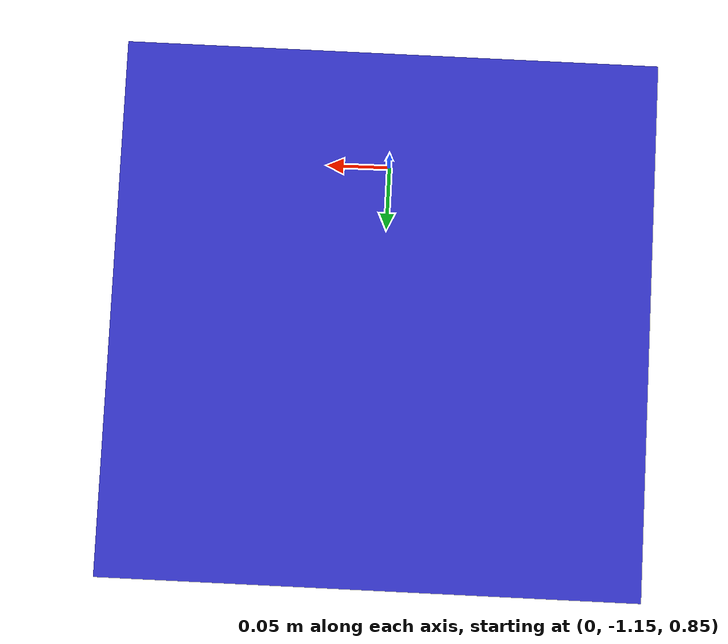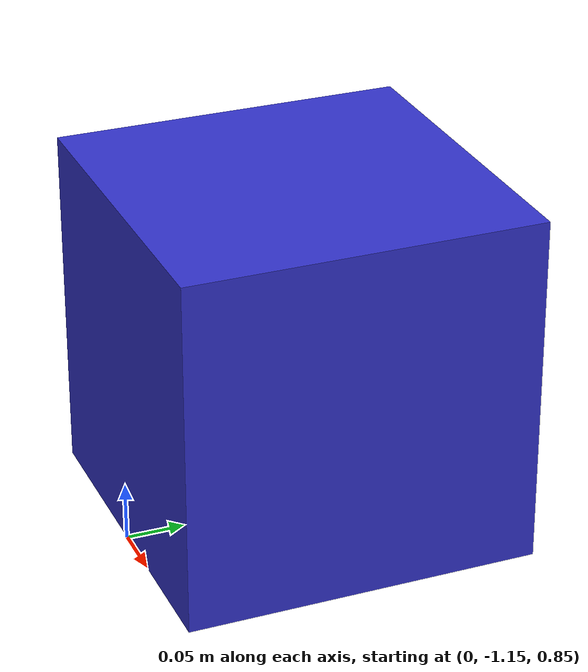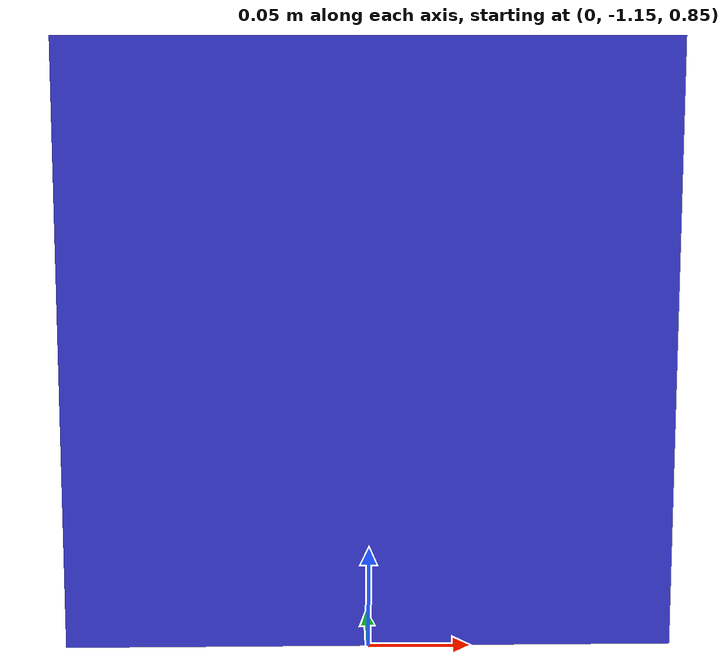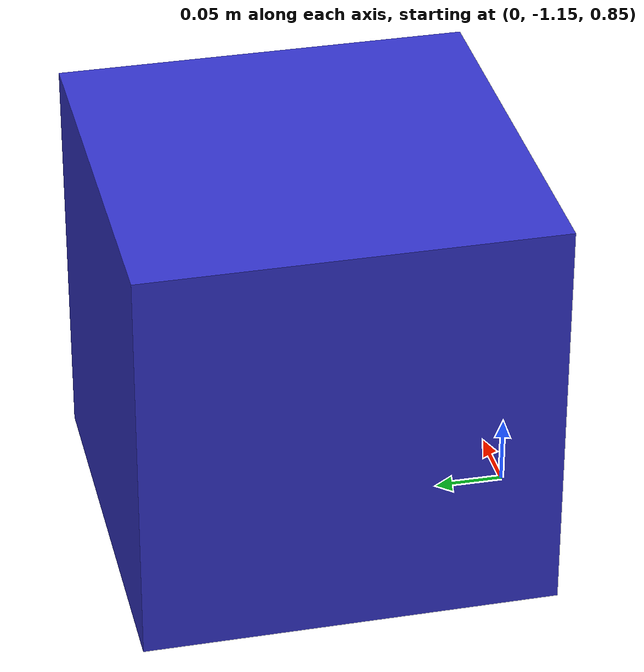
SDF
<?xml version="1.0"?>
<sdf version="1.4">
  <model name="world">
    <pose>0 0 0  0 0 0</pose>
    <static>true</static>
    <link name="box">
          <visual name="visual">
            <pose>0 -1 1 0 0 0</pose>
            <geometry>
              <box>
                <size>0.3 0.3 0.3</size>
              </box>
            </geometry>
            <material name="blue">
              <ambient>0.2 0.2 0.8 1</ambient>
              <diffuse>0.2 0.2 0.8 1</diffuse>
              <specular>0.2 0.2 0.8 1</specular>
            </material>
          </visual>
        </link>
  </model>

</sdf>
